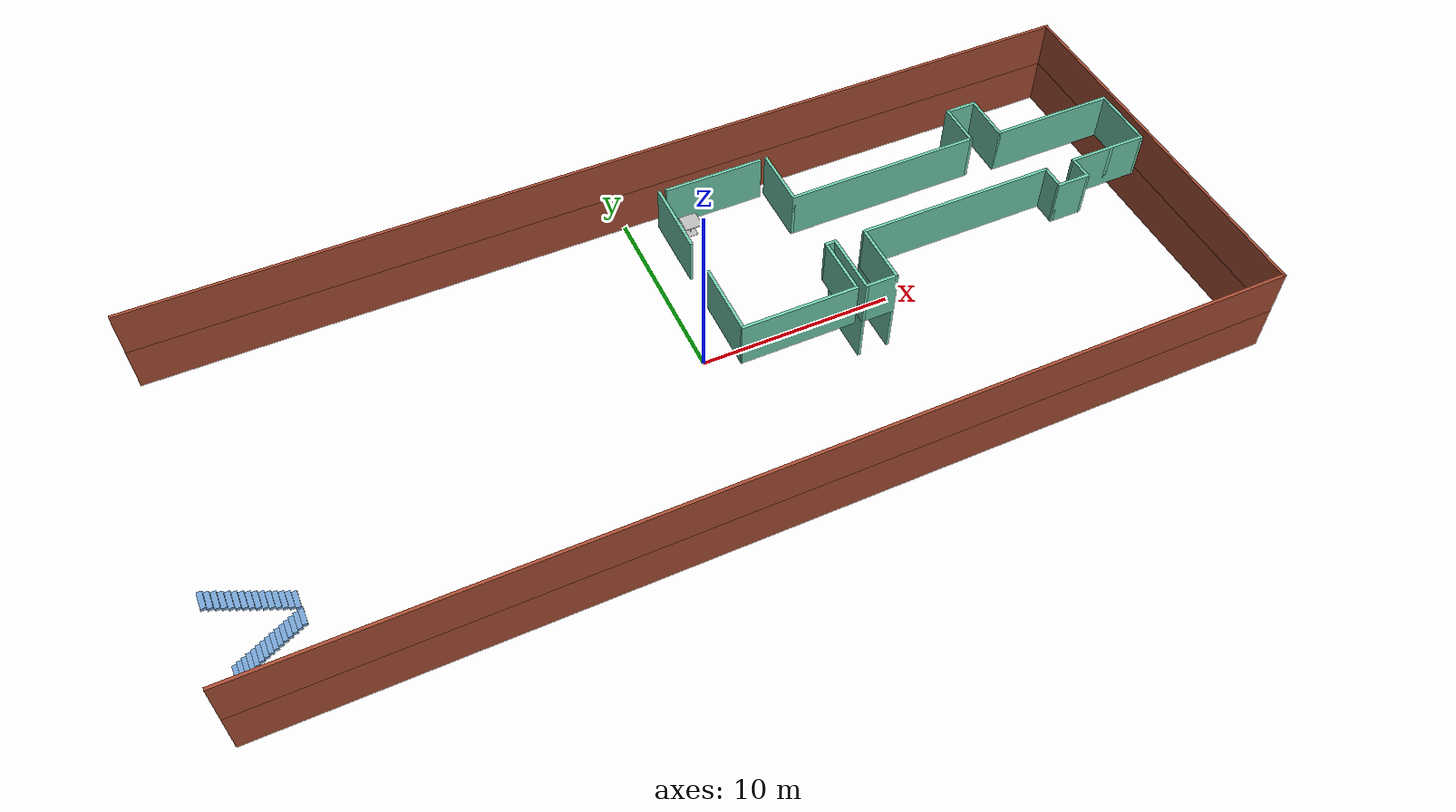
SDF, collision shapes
<sdf version="1.7">
 <model name="Version_precise_map_gazebo">
  <link name="Stairs_1">
   <visual name="Stairs_1_Visual_0">
    <pose>-24.3272 -6.95968 0.083333 0 -0 1.5708</pose>
    <geometry><box><size>0.81 0.233333 0.166667</size></box></geometry>
    <material>
     <script><uri>file://media/materials/scripts/gazebo.material</uri><name>Gazebo/Grey</name></script>
     <ambient>0.447059 0.623529 0.811765 1</ambient>
    </material>
    <meta><layer>0</layer></meta>
   </visual>
   <collision name="Stairs_1_Collision_0">
    <geometry><box><size>0.81 0.233333 0.166667</size></box></geometry>
    <pose>-24.3272 -6.95968 0.083333 0 -0 1.5708</pose>
   </collision>
   <visual name="Stairs_1_Visual_1">
    <pose>-24.0938 -6.95968 0.25 0 -0 1.5708</pose>
    <geometry><box><size>0.81 0.233333 0.166667</size></box></geometry>
    <material>
     <script><uri>file://media/materials/scripts/gazebo.material</uri><name>Gazebo/Grey</name></script>
     <ambient>0.447059 0.623529 0.811765 1</ambient>
    </material>
    <meta><layer>0</layer></meta>
   </visual>
   <collision name="Stairs_1_Collision_1">
    <geometry><box><size>0.81 0.233333 0.166667</size></box></geometry>
    <pose>-24.0938 -6.95968 0.25 0 -0 1.5708</pose>
   </collision>
   <visual name="Stairs_1_Visual_2">
    <pose>-23.8605 -6.95968 0.416667 0 -0 1.5708</pose>
    <geometry><box><size>0.81 0.233333 0.166667</size></box></geometry>
    <material>
     <script><uri>file://media/materials/scripts/gazebo.material</uri><name>Gazebo/Grey</name></script>
     <ambient>0.447059 0.623529 0.811765 1</ambient>
    </material>
    <meta><layer>0</layer></meta>
   </visual>
   <collision name="Stairs_1_Collision_2">
    <geometry><box><size>0.81 0.233333 0.166667</size></box></geometry>
    <pose>-23.8605 -6.95968 0.416667 0 -0 1.5708</pose>
   </collision>
   <visual name="Stairs_1_Visual_3">
    <pose>-23.6272 -6.95968 0.583333 0 -0 1.5708</pose>
    <geometry><box><size>0.81 0.233333 0.166667</size></box></geometry>
    <material>
     <script><uri>file://media/materials/scripts/gazebo.material</uri><name>Gazebo/Grey</name></script>
     <ambient>0.447059 0.623529 0.811765 1</ambient>
    </material>
    <meta><layer>0</layer></meta>
   </visual>
   <collision name="Stairs_1_Collision_3">
    <geometry><box><size>0.81 0.233333 0.166667</size></box></geometry>
    <pose>-23.6272 -6.95968 0.583333 0 -0 1.5708</pose>
   </collision>
   <visual name="Stairs_1_Visual_4">
    <pose>-23.3938 -6.95968 0.75 0 -0 1.5708</pose>
    <geometry><box><size>0.81 0.233333 0.166667</size></box></geometry>
    <material>
     <script><uri>file://media/materials/scripts/gazebo.material</uri><name>Gazebo/Grey</name></script>
     <ambient>0.447059 0.623529 0.811765 1</ambient>
    </material>
    <meta><layer>0</layer></meta>
   </visual>
   <collision name="Stairs_1_Collision_4">
    <geometry><box><size>0.81 0.233333 0.166667</size></box></geometry>
    <pose>-23.3938 -6.95968 0.75 0 -0 1.5708</pose>
   </collision>
   <visual name="Stairs_1_Visual_5">
    <pose>-23.1605 -6.95968 0.916667 0 -0 1.5708</pose>
    <geometry><box><size>0.81 0.233333 0.166667</size></box></geometry>
    <material>
     <script><uri>file://media/materials/scripts/gazebo.material</uri><name>Gazebo/Grey</name></script>
     <ambient>0.447059 0.623529 0.811765 1</ambient>
    </material>
    <meta><layer>0</layer></meta>
   </visual>
   <collision name="Stairs_1_Collision_5">
    <geometry><box><size>0.81 0.233333 0.166667</size></box></geometry>
    <pose>-23.1605 -6.95968 0.916667 0 -0 1.5708</pose>
   </collision>
   <visual name="Stairs_1_Visual_6">
    <pose>-22.9272 -6.95968 1.08333 0 -0 1.5708</pose>
    <geometry><box><size>0.81 0.233333 0.166667</size></box></geometry>
    <material>
     <script><uri>file://media/materials/scripts/gazebo.material</uri><name>Gazebo/Grey</name></script>
     <ambient>0.447059 0.623529 0.811765 1</ambient>
    </material>
    <meta><layer>0</layer></meta>
   </visual>
   <collision name="Stairs_1_Collision_6">
    <geometry><box><size>0.81 0.233333 0.166667</size></box></geometry>
    <pose>-22.9272 -6.95968 1.08333 0 -0 1.5708</pose>
   </collision>
   <visual name="Stairs_1_Visual_7">
    <pose>-22.6938 -6.95968 1.25 0 -0 1.5708</pose>
    <geometry><box><size>0.81 0.233333 0.166667</size></box></geometry>
    <material>
     <script><uri>file://media/materials/scripts/gazebo.material</uri><name>Gazebo/Grey</name></script>
     <ambient>0.447059 0.623529 0.811765 1</ambient>
    </material>
    <meta><layer>0</layer></meta>
   </visual>
   <collision name="Stairs_1_Collision_7">
    <geometry><box><size>0.81 0.233333 0.166667</size></box></geometry>
    <pose>-22.6938 -6.95968 1.25 0 -0 1.5708</pose>
   </collision>
   <visual name="Stairs_1_Visual_8">
    <pose>-22.4605 -6.95968 1.41667 0 -0 1.5708</pose>
    <geometry><box><size>0.81 0.233333 0.166667</size></box></geometry>
    <material>
     <script><uri>file://media/materials/scripts/gazebo.material</uri><name>Gazebo/Grey</name></script>
     <ambient>0.447059 0.623529 0.811765 1</ambient>
    </material>
    <meta><layer>0</layer></meta>
   </visual>
   <collision name="Stairs_1_Collision_8">
    <geometry><box><size>0.81 0.233333 0.166667</size></box></geometry>
    <pose>-22.4605 -6.95968 1.41667 0 -0 1.5708</pose>
   </collision>
   <visual name="Stairs_1_Visual_9">
    <pose>-22.2272 -6.95968 1.58333 0 -0 1.5708</pose>
    <geometry><box><size>0.81 0.233333 0.166667</size></box></geometry>
    <material>
     <script><uri>file://media/materials/scripts/gazebo.material</uri><name>Gazebo/Grey</name></script>
     <ambient>0.447059 0.623529 0.811765 1</ambient>
    </material>
    <meta><layer>0</layer></meta>
   </visual>
   <collision name="Stairs_1_Collision_9">
    <geometry><box><size>0.81 0.233333 0.166667</size></box></geometry>
    <pose>-22.2272 -6.95968 1.58333 0 -0 1.5708</pose>
   </collision>
   <visual name="Stairs_1_Visual_10">
    <pose>-21.9938 -6.95968 1.75 0 -0 1.5708</pose>
    <geometry><box><size>0.81 0.233333 0.166667</size></box></geometry>
    <material>
     <script><uri>file://media/materials/scripts/gazebo.material</uri><name>Gazebo/Grey</name></script>
     <ambient>0.447059 0.623529 0.811765 1</ambient>
    </material>
    <meta><layer>0</layer></meta>
   </visual>
   <collision name="Stairs_1_Collision_10">
    <geometry><box><size>0.81 0.233333 0.166667</size></box></geometry>
    <pose>-21.9938 -6.95968 1.75 0 -0 1.5708</pose>
   </collision>
   <visual name="Stairs_1_Visual_11">
    <pose>-21.7605 -6.95968 1.91667 0 -0 1.5708</pose>
    <geometry><box><size>0.81 0.233333 0.166667</size></box></geometry>
    <material>
     <script><uri>file://media/materials/scripts/gazebo.material</uri><name>Gazebo/Grey</name></script>
     <ambient>0.447059 0.623529 0.811765 1</ambient>
    </material>
    <meta><layer>0</layer></meta>
   </visual>
   <collision name="Stairs_1_Collision_11">
    <geometry><box><size>0.81 0.233333 0.166667</size></box></geometry>
    <pose>-21.7605 -6.95968 1.91667 0 -0 1.5708</pose>
   </collision>
   <visual name="Stairs_1_Visual_12">
    <pose>-21.5272 -6.95968 2.08333 0 -0 1.5708</pose>
    <geometry><box><size>0.81 0.233333 0.166667</size></box></geometry>
    <material>
     <script><uri>file://media/materials/scripts/gazebo.material</uri><name>Gazebo/Grey</name></script>
     <ambient>0.447059 0.623529 0.811765 1</ambient>
    </material>
    <meta><layer>0</layer></meta>
   </visual>
   <collision name="Stairs_1_Collision_12">
    <geometry><box><size>0.81 0.233333 0.166667</size></box></geometry>
    <pose>-21.5272 -6.95968 2.08333 0 -0 1.5708</pose>
   </collision>
   <visual name="Stairs_1_Visual_13">
    <pose>-21.2938 -6.95968 2.25 0 -0 1.5708</pose>
    <geometry><box><size>0.81 0.233333 0.166667</size></box></geometry>
    <material>
     <script><uri>file://media/materials/scripts/gazebo.material</uri><name>Gazebo/Grey</name></script>
     <ambient>0.447059 0.623529 0.811765 1</ambient>
    </material>
    <meta><layer>0</layer></meta>
   </visual>
   <collision name="Stairs_1_Collision_13">
    <geometry><box><size>0.81 0.233333 0.166667</size></box></geometry>
    <pose>-21.2938 -6.95968 2.25 0 -0 1.5708</pose>
   </collision>
   <visual name="Stairs_1_Visual_14">
    <pose>-21.0605 -6.95968 2.41667 0 -0 1.5708</pose>
    <geometry><box><size>0.81 0.233333 0.166667</size></box></geometry>
    <material>
     <script><uri>file://media/materials/scripts/gazebo.material</uri><name>Gazebo/Grey</name></script>
     <ambient>0.447059 0.623529 0.811765 1</ambient>
    </material>
    <meta><layer>0</layer></meta>
   </visual>
   <collision name="Stairs_1_Collision_14">
    <geometry><box><size>0.81 0.233333 0.166667</size></box></geometry>
    <pose>-21.0605 -6.95968 2.41667 0 -0 1.5708</pose>
   </collision>
  </link>
  <link name="Stairs_2">
   <visual name="Stairs_2_Visual_0">
    <pose>-21.0867 -6.202 2.58333 0 -0 -1.5708</pose>
    <geometry><box><size>0.81 0.233333 0.166667</size></box></geometry>
    <material>
     <script><uri>file://media/materials/scripts/gazebo.material</uri><name>Gazebo/Grey</name></script>
     <ambient>0.447059 0.623529 0.811765 1</ambient>
    </material>
    <meta><layer>1</layer></meta>
   </visual>
   <collision name="Stairs_2_Collision_0">
    <geometry><box><size>0.81 0.233333 0.166667</size></box></geometry>
    <pose>-21.0867 -6.202 2.58333 0 -0 -1.5708</pose>
   </collision>
   <visual name="Stairs_2_Visual_1">
    <pose>-21.32 -6.202 2.75 0 -0 -1.5708</pose>
    <geometry><box><size>0.81 0.233333 0.166667</size></box></geometry>
    <material>
     <script><uri>file://media/materials/scripts/gazebo.material</uri><name>Gazebo/Grey</name></script>
     <ambient>0.447059 0.623529 0.811765 1</ambient>
    </material>
    <meta><layer>1</layer></meta>
   </visual>
   <collision name="Stairs_2_Collision_1">
    <geometry><box><size>0.81 0.233333 0.166667</size></box></geometry>
    <pose>-21.32 -6.202 2.75 0 -0 -1.5708</pose>
   </collision>
   <visual name="Stairs_2_Visual_2">
    <pose>-21.5533 -6.202 2.91667 0 -0 -1.5708</pose>
    <geometry><box><size>0.81 0.233333 0.166667</size></box></geometry>
    <material>
     <script><uri>file://media/materials/scripts/gazebo.material</uri><name>Gazebo/Grey</name></script>
     <ambient>0.447059 0.623529 0.811765 1</ambient>
    </material>
    <meta><layer>1</layer></meta>
   </visual>
   <collision name="Stairs_2_Collision_2">
    <geometry><box><size>0.81 0.233333 0.166667</size></box></geometry>
    <pose>-21.5533 -6.202 2.91667 0 -0 -1.5708</pose>
   </collision>
   <visual name="Stairs_2_Visual_3">
    <pose>-21.7867 -6.202 3.08333 0 -0 -1.5708</pose>
    <geometry><box><size>0.81 0.233333 0.166667</size></box></geometry>
    <material>
     <script><uri>file://media/materials/scripts/gazebo.material</uri><name>Gazebo/Grey</name></script>
     <ambient>0.447059 0.623529 0.811765 1</ambient>
    </material>
    <meta><layer>1</layer></meta>
   </visual>
   <collision name="Stairs_2_Collision_3">
    <geometry><box><size>0.81 0.233333 0.166667</size></box></geometry>
    <pose>-21.7867 -6.202 3.08333 0 -0 -1.5708</pose>
   </collision>
   <visual name="Stairs_2_Visual_4">
    <pose>-22.02 -6.202 3.25 0 -0 -1.5708</pose>
    <geometry><box><size>0.81 0.233333 0.166667</size></box></geometry>
    <material>
     <script><uri>file://media/materials/scripts/gazebo.material</uri><name>Gazebo/Grey</name></script>
     <ambient>0.447059 0.623529 0.811765 1</ambient>
    </material>
    <meta><layer>1</layer></meta>
   </visual>
   <collision name="Stairs_2_Collision_4">
    <geometry><box><size>0.81 0.233333 0.166667</size></box></geometry>
    <pose>-22.02 -6.202 3.25 0 -0 -1.5708</pose>
   </collision>
   <visual name="Stairs_2_Visual_5">
    <pose>-22.2533 -6.202 3.41667 0 -0 -1.5708</pose>
    <geometry><box><size>0.81 0.233333 0.166667</size></box></geometry>
    <material>
     <script><uri>file://media/materials/scripts/gazebo.material</uri><name>Gazebo/Grey</name></script>
     <ambient>0.447059 0.623529 0.811765 1</ambient>
    </material>
    <meta><layer>1</layer></meta>
   </visual>
   <collision name="Stairs_2_Collision_5">
    <geometry><box><size>0.81 0.233333 0.166667</size></box></geometry>
    <pose>-22.2533 -6.202 3.41667 0 -0 -1.5708</pose>
   </collision>
   <visual name="Stairs_2_Visual_6">
    <pose>-22.4867 -6.202 3.58333 0 -0 -1.5708</pose>
    <geometry><box><size>0.81 0.233333 0.166667</size></box></geometry>
    <material>
     <script><uri>file://media/materials/scripts/gazebo.material</uri><name>Gazebo/Grey</name></script>
     <ambient>0.447059 0.623529 0.811765 1</ambient>
    </material>
    <meta><layer>1</layer></meta>
   </visual>
   <collision name="Stairs_2_Collision_6">
    <geometry><box><size>0.81 0.233333 0.166667</size></box></geometry>
    <pose>-22.4867 -6.202 3.58333 0 -0 -1.5708</pose>
   </collision>
   <visual name="Stairs_2_Visual_7">
    <pose>-22.72 -6.202 3.75 0 -0 -1.5708</pose>
    <geometry><box><size>0.81 0.233333 0.166667</size></box></geometry>
    <material>
     <script><uri>file://media/materials/scripts/gazebo.material</uri><name>Gazebo/Grey</name></script>
     <ambient>0.447059 0.623529 0.811765 1</ambient>
    </material>
    <meta><layer>1</layer></meta>
   </visual>
   <collision name="Stairs_2_Collision_7">
    <geometry><box><size>0.81 0.233333 0.166667</size></box></geometry>
    <pose>-22.72 -6.202 3.75 0 -0 -1.5708</pose>
   </collision>
   <visual name="Stairs_2_Visual_8">
    <pose>-22.9533 -6.202 3.91667 0 -0 -1.5708</pose>
    <geometry><box><size>0.81 0.233333 0.166667</size></box></geometry>
    <material>
     <script><uri>file://media/materials/scripts/gazebo.material</uri><name>Gazebo/Grey</name></script>
     <ambient>0.447059 0.623529 0.811765 1</ambient>
    </material>
    <meta><layer>1</layer></meta>
   </visual>
   <collision name="Stairs_2_Collision_8">
    <geometry><box><size>0.81 0.233333 0.166667</size></box></geometry>
    <pose>-22.9533 -6.202 3.91667 0 -0 -1.5708</pose>
   </collision>
   <visual name="Stairs_2_Visual_9">
    <pose>-23.1867 -6.202 4.08333 0 -0 -1.5708</pose>
    <geometry><box><size>0.81 0.233333 0.166667</size></box></geometry>
    <material>
     <script><uri>file://media/materials/scripts/gazebo.material</uri><name>Gazebo/Grey</name></script>
     <ambient>0.447059 0.623529 0.811765 1</ambient>
    </material>
    <meta><layer>1</layer></meta>
   </visual>
   <collision name="Stairs_2_Collision_9">
    <geometry><box><size>0.81 0.233333 0.166667</size></box></geometry>
    <pose>-23.1867 -6.202 4.08333 0 -0 -1.5708</pose>
   </collision>
   <visual name="Stairs_2_Visual_10">
    <pose>-23.42 -6.202 4.25 0 -0 -1.5708</pose>
    <geometry><box><size>0.81 0.233333 0.166667</size></box></geometry>
    <material>
     <script><uri>file://media/materials/scripts/gazebo.material</uri><name>Gazebo/Grey</name></script>
     <ambient>0.447059 0.623529 0.811765 1</ambient>
    </material>
    <meta><layer>1</layer></meta>
   </visual>
   <collision name="Stairs_2_Collision_10">
    <geometry><box><size>0.81 0.233333 0.166667</size></box></geometry>
    <pose>-23.42 -6.202 4.25 0 -0 -1.5708</pose>
   </collision>
   <visual name="Stairs_2_Visual_11">
    <pose>-23.6533 -6.202 4.41667 0 -0 -1.5708</pose>
    <geometry><box><size>0.81 0.233333 0.166667</size></box></geometry>
    <material>
     <script><uri>file://media/materials/scripts/gazebo.material</uri><name>Gazebo/Grey</name></script>
     <ambient>0.447059 0.623529 0.811765 1</ambient>
    </material>
    <meta><layer>1</layer></meta>
   </visual>
   <collision name="Stairs_2_Collision_11">
    <geometry><box><size>0.81 0.233333 0.166667</size></box></geometry>
    <pose>-23.6533 -6.202 4.41667 0 -0 -1.5708</pose>
   </collision>
   <visual name="Stairs_2_Visual_12">
    <pose>-23.8867 -6.202 4.58333 0 -0 -1.5708</pose>
    <geometry><box><size>0.81 0.233333 0.166667</size></box></geometry>
    <material>
     <script><uri>file://media/materials/scripts/gazebo.material</uri><name>Gazebo/Grey</name></script>
     <ambient>0.447059 0.623529 0.811765 1</ambient>
    </material>
    <meta><layer>1</layer></meta>
   </visual>
   <collision name="Stairs_2_Collision_12">
    <geometry><box><size>0.81 0.233333 0.166667</size></box></geometry>
    <pose>-23.8867 -6.202 4.58333 0 -0 -1.5708</pose>
   </collision>
   <visual name="Stairs_2_Visual_13">
    <pose>-24.12 -6.202 4.75 0 -0 -1.5708</pose>
    <geometry><box><size>0.81 0.233333 0.166667</size></box></geometry>
    <material>
     <script><uri>file://media/materials/scripts/gazebo.material</uri><name>Gazebo/Grey</name></script>
     <ambient>0.447059 0.623529 0.811765 1</ambient>
    </material>
    <meta><layer>1</layer></meta>
   </visual>
   <collision name="Stairs_2_Collision_13">
    <geometry><box><size>0.81 0.233333 0.166667</size></box></geometry>
    <pose>-24.12 -6.202 4.75 0 -0 -1.5708</pose>
   </collision>
   <visual name="Stairs_2_Visual_14">
    <pose>-24.3533 -6.202 4.91667 0 -0 -1.5708</pose>
    <geometry><box><size>0.81 0.233333 0.166667</size></box></geometry>
    <material>
     <script><uri>file://media/materials/scripts/gazebo.material</uri><name>Gazebo/Grey</name></script>
     <ambient>0.447059 0.623529 0.811765 1</ambient>
    </material>
    <meta><layer>1</layer></meta>
   </visual>
   <collision name="Stairs_2_Collision_14">
    <geometry><box><size>0.81 0.233333 0.166667</size></box></geometry>
    <pose>-24.3533 -6.202 4.91667 0 -0 -1.5708</pose>
   </collision>
  </link>
  <link name="Wall_0">
   <collision name="Wall_0_Collision">
    <geometry><box><size>50.15 0.15 2.5</size></box></geometry>
    <pose>0 0 1.25 0 -0 0</pose>
   </collision>
   <visual name="Wall_0_Visual">
    <pose>0 0 1.25 0 -0 0</pose>
    <geometry><box><size>50.15 0.15 2.5</size></box></geometry>
    <material>
     <script><uri>file://media/materials/scripts/gazebo.material</uri><name>Gazebo/Bricks</name></script>
     <ambient>1 1 1 1</ambient>
    </material>
    <meta><layer>0</layer></meta>
   </visual>
   <pose>0 10 0 0 -0 0</pose>
  </link>
  <link name="Wall_118">
   <collision name="Wall_118_Collision">
    <geometry><box><size>3.875 0.15 2.5</size></box></geometry>
    <pose>0 0 1.25 0 -0 0</pose>
   </collision>
   <visual name="Wall_118_Visual">
    <pose>0 0 1.25 0 -0 0</pose>
    <geometry><box><size>3.875 0.15 2.5</size></box></geometry>
    <material>
     <script><uri>file://media/materials/scripts/gazebo.material</uri><name>Gazebo/Grey</name></script>
     <ambient>0.435294 0.796078 0.67451 1</ambient>
    </material>
    <meta><layer>1</layer></meta>
    <transparency>0.5</transparency>
   </visual>
   <pose>0.8 5.1375 2.5 0 -0 -1.5708</pose>
  </link>
  <link name="Wall_146">
   <collision name="Wall_146_Collision">
    <geometry><box><size>4.2 0.15 2.5</size></box></geometry>
    <pose>0 0 1.25 0 -0 0</pose>
   </collision>
   <visual name="Wall_146_Visual">
    <pose>0 0 1.25 0 -0 0</pose>
    <geometry><box><size>4.2 0.15 2.5</size></box></geometry>
    <material>
     <script><uri>file://media/materials/scripts/gazebo.material</uri><name>Gazebo/Grey</name></script>
     <ambient>0.435294 0.796078 0.67451 1</ambient>
    </material>
    <meta><layer>1</layer></meta>
    <transparency>0.5</transparency>
   </visual>
   <pose>22.475 0.55 2.5 0 -0 0</pose>
  </link>
  <link name="Wall_148">
   <collision name="Wall_148_Collision">
    <geometry><box><size>3.25 0.15 2.5</size></box></geometry>
    <pose>0 0 1.25 0 -0 0</pose>
   </collision>
   <visual name="Wall_148_Visual">
    <pose>0 0 1.25 0 -0 0</pose>
    <geometry><box><size>3.25 0.15 2.5</size></box></geometry>
    <material>
     <script><uri>file://media/materials/scripts/gazebo.material</uri><name>Gazebo/Grey</name></script>
     <ambient>0.435294 0.796078 0.67451 1</ambient>
    </material>
    <meta><layer>1</layer></meta>
    <transparency>0.5</transparency>
   </visual>
   <pose>7.08 -1 2.5 0 -0 -1.5708</pose>
  </link>
  <link name="Wall_150">
   <collision name="Wall_150_Collision">
    <geometry><box><size>3.25 0.15 2.5</size></box></geometry>
    <pose>0 0 1.25 0 -0 0</pose>
   </collision>
   <visual name="Wall_150_Visual">
    <pose>0 0 1.25 0 -0 0</pose>
    <geometry><box><size>3.25 0.15 2.5</size></box></geometry>
    <material>
     <script><uri>file://media/materials/scripts/gazebo.material</uri><name>Gazebo/Grey</name></script>
     <ambient>0.435294 0.796078 0.67451 1</ambient>
    </material>
    <meta><layer>1</layer></meta>
    <transparency>0.5</transparency>
   </visual>
   <pose>8.64 -1 2.5 0 -0 -1.5708</pose>
  </link>
  <link name="Wall_198">
   <collision name="Wall_198_Collision">
    <geometry><box><size>1.71 0.15 2.5</size></box></geometry>
    <pose>0 0 1.25 0 -0 0</pose>
   </collision>
   <visual name="Wall_198_Visual">
    <pose>0 0 1.25 0 -0 0</pose>
    <geometry><box><size>1.71 0.15 2.5</size></box></geometry>
    <material>
     <script><uri>file://media/materials/scripts/gazebo.material</uri><name>Gazebo/Grey</name></script>
     <ambient>0.435294 0.796078 0.67451 1</ambient>
    </material>
    <meta><layer>1</layer></meta>
    <transparency>0.5</transparency>
   </visual>
   <pose>7.86 -2.55 2.5 0 -0 3.14159</pose>
  </link>
  <link name="Wall_152">
   <collision name="Wall_152_Collision">
    <geometry><box><size>3.25 0.15 2.5</size></box></geometry>
    <pose>0 0 1.25 0 -0 0</pose>
   </collision>
   <visual name="Wall_152_Visual">
    <pose>0 0 1.25 0 -0 0</pose>
    <geometry><box><size>3.85 0.15 2.5</size></box></geometry>
    <material>
     <script><uri>file://media/materials/scripts/gazebo.material</uri><name>Gazebo/Grey</name></script>
     <ambient>0.435294 0.796078 0.67451 1</ambient>
    </material>
    <meta><layer>0</layer></meta>
    <transparency>0.5</transparency>
   </visual>
   <pose>7.08 -1 0 0 -0 -1.5708</pose>
  </link>
  <link name="Wall_154">
   <collision name="Wall_154_Collision">
    <geometry><box><size>3.25 0.15 2.5</size></box></geometry>
    <pose>0 0 1.25 0 -0 0</pose>
   </collision>
   <visual name="Wall_154_Visual">
    <pose>0 0 1.25 0 -0 0</pose>
    <geometry><box><size>3.25 0.15 2.5</size></box></geometry>
    <material>
     <script><uri>file://media/materials/scripts/gazebo.material</uri><name>Gazebo/Grey</name></script>
     <ambient>0.435294 0.796078 0.67451 1</ambient>
    </material>
    <meta><layer>0</layer></meta>
    <transparency>0.5</transparency>
   </visual>
   <pose>8.64 -1 0 0 -0 -1.5708</pose>
  </link>
  <link name="Wall_2">
   <collision name="Wall_2_Collision">
    <geometry><box><size>50.15 0.15 2.5</size></box></geometry>
    <pose>0 0 1.25 0 -0 0</pose>
   </collision>
   <visual name="Wall_2_Visual">
    <pose>0 0 1.25 0 -0 0</pose>
    <geometry><box><size>50.15 0.15 2.5</size></box></geometry>
    <material>
     <script><uri>file://media/materials/scripts/gazebo.material</uri><name>Gazebo/Bricks</name></script>
     <ambient>1 1 1 1</ambient>
    </material>
    <meta><layer>0</layer></meta>
   </visual>
   <pose>0 -10 0 0 -0 3.14159</pose>
  </link>
  <link name="Wall_52">
   <collision name="Wall_52_Collision">
    <geometry><box><size>50.15 0.15 2.5</size></box></geometry>
    <pose>0 0 1.25 0 -0 0</pose>
   </collision>
   <visual name="Wall_52_Visual">
    <pose>0 0 1.25 0 -0 0</pose>
    <geometry><box><size>50.15 0.15 2.5</size></box></geometry>
    <material>
     <script><uri>file://media/materials/scripts/gazebo.material</uri><name>Gazebo/Bricks</name></script>
     <ambient>1 1 1 1</ambient>
    </material>
    <meta><layer>1</layer></meta>
   </visual>
   <pose>0 10 2.5 0 -0 0</pose>
  </link>
  <link name="Wall_53">
   <collision name="Wall_53_Collision">
    <geometry><box><size>50.15 0.15 2.5</size></box></geometry>
    <pose>0 0 1.25 0 -0 0</pose>
   </collision>
   <visual name="Wall_53_Visual">
    <pose>0 0 1.25 0 -0 0</pose>
    <geometry><box><size>50.15 0.15 2.5</size></box></geometry>
    <material>
     <script><uri>file://media/materials/scripts/gazebo.material</uri><name>Gazebo/Bricks</name></script>
     <ambient>1 1 1 1</ambient>
    </material>
    <meta><layer>1</layer></meta>
   </visual>
   <pose>0 -10 2.5 0 -0 3.14159</pose>
  </link>
  <link name="Wall_55">
   <collision name="Wall_55_Collision">
    <geometry><box><size>20.15 0.15 2.5</size></box></geometry>
    <pose>0 0 1.25 0 -0 0</pose>
   </collision>
   <visual name="Wall_55_Visual">
    <pose>0 0 1.25 0 -0 0</pose>
    <geometry><box><size>20.15 0.15 2.5</size></box></geometry>
    <material>
     <script><uri>file://media/materials/scripts/gazebo.material</uri><name>Gazebo/Bricks</name></script>
     <ambient>1 1 1 1</ambient>
    </material>
    <meta><layer>1</layer></meta>
   </visual>
   <pose>25 0 2.5 0 -0 1.5708</pose>
  </link>
  <link name="Wall_56">
   <collision name="Wall_56_Collision">
    <geometry><box><size>5.15 0.15 2.5</size></box></geometry>
    <pose>0 0 1.25 0 -0 0</pose>
   </collision>
   <visual name="Wall_56_Visual">
    <pose>0 0 1.25 0 -0 0</pose>
    <geometry><box><size>5.95 0.15 2.5</size></box></geometry>
    <material>
     <script><uri>file://media/materials/scripts/gazebo.material</uri><name>Gazebo/Grey</name></script>
     <ambient>0.435294 0.796078 0.67451 1</ambient>
    </material>
    <meta><layer>1</layer></meta>
    <transparency>0.5</transparency>
   </visual>
   <pose>3.7 7 2.5 0 -0 0</pose>
  </link>
  <link name="Wall_58">
   <collision name="Wall_58_Collision">
    <geometry><box><size>3.15 0.15 2.5</size></box></geometry>
    <pose>0 0 1.25 0 -0 0</pose>
   </collision>
   <visual name="Wall_58_Visual">
    <pose>0 0 1.25 0 -0 0</pose>
    <geometry><box><size>3.15 0.15 2.5</size></box></geometry>
    <material>
     <script><uri>file://media/materials/scripts/gazebo.material</uri><name>Gazebo/Grey</name></script>
     <ambient>0.435294 0.796078 0.67451 1</ambient>
    </material>
    <meta><layer>1</layer></meta>
    <transparency>0.5</transparency>
   </visual>
   <pose>6.6 5.5 2.5 0 -0 -1.5708</pose>
  </link>
  <link name="Wall_6">
   <collision name="Wall_6_Collision">
    <geometry><box><size>20.15 0.15 2.5</size></box></geometry>
    <pose>0 0 1.25 0 -0 0</pose>
   </collision>
   <visual name="Wall_6_Visual">
    <pose>0 0 1.25 0 -0 0</pose>
    <geometry><box><size>20.15 0.15 2.5</size></box></geometry>
    <material>
     <script><uri>file://media/materials/scripts/gazebo.material</uri><name>Gazebo/Bricks</name></script>
     <ambient>1 1 1 1</ambient>
    </material>
    <meta><layer>0</layer></meta>
   </visual>
   <pose>25 0 0 0 -0 1.5708</pose>
  </link>
  <link name="Wall_60">
   <collision name="Wall_60_Collision">
    <geometry><box><size>10.15 0.15 2.5</size></box></geometry>
    <pose>0 0 1.25 0 -0 0</pose>
   </collision>
   <visual name="Wall_60_Visual">
    <pose>0 0 1.25 0 -0 0</pose>
    <geometry><box><size>10.15 0.15 2.5</size></box></geometry>
    <material>
     <script><uri>file://media/materials/scripts/gazebo.material</uri><name>Gazebo/Grey</name></script>
     <ambient>0.435294 0.796078 0.67451 1</ambient>
    </material>
    <meta><layer>1</layer></meta>
    <transparency>0.5</transparency>
   </visual>
   <pose>11.6 4 2.5 0 -0 0</pose>
  </link>
  <link name="Wall_62">
   <collision name="Wall_62_Collision">
    <geometry><box><size>2.4 0.15 2.5</size></box></geometry>
    <pose>0 0 1.25 0 -0 0</pose>
   </collision>
   <visual name="Wall_62_Visual">
    <pose>0 0 1.25 0 -0 0</pose>
    <geometry><box><size>2.4 0.15 2.5</size></box></geometry>
    <material>
     <script><uri>file://media/materials/scripts/gazebo.material</uri><name>Gazebo/Grey</name></script>
     <ambient>0.435294 0.796078 0.67451 1</ambient>
    </material>
    <meta><layer>1</layer></meta>
    <transparency>0.5</transparency>
   </visual>
   <pose>16.6 5.125 2.5 0 -0 1.5708</pose>
  </link>
  <link name="Wall_64">
   <collision name="Wall_64_Collision">
    <geometry><box><size>2.6 0.15 2.5</size></box></geometry>
    <pose>0 0 1.25 0 -0 0</pose>
   </collision>
   <visual name="Wall_64_Visual">
    <pose>0 0 1.25 0 -0 0</pose>
    <geometry><box><size>2.6 0.15 2.5</size></box></geometry>
    <material>
     <script><uri>file://media/materials/scripts/gazebo.material</uri><name>Gazebo/Grey</name></script>
     <ambient>0.435294 0.796078 0.67451 1</ambient>
    </material>
    <meta><layer>1</layer></meta>
    <transparency>0.5</transparency>
   </visual>
   <pose>18.15 5.025 2.5 0 -0 -1.5708</pose>
  </link>
  <link name="Wall_66">
   <collision name="Wall_66_Collision">
    <geometry><box><size>1.7 0.15 2.5</size></box></geometry>
    <pose>0 0 1.25 0 -0 0</pose>
   </collision>
   <visual name="Wall_66_Visual">
    <pose>0 0 1.25 0 -0 0</pose>
    <geometry><box><size>1.7 0.15 2.5</size></box></geometry>
    <material>
     <script><uri>file://media/materials/scripts/gazebo.material</uri><name>Gazebo/Grey</name></script>
     <ambient>0.435294 0.796078 0.67451 1</ambient>
    </material>
    <meta><layer>1</layer></meta>
    <transparency>0.5</transparency>
   </visual>
   <pose>17.375 6.25 2.5 0 -0 0</pose>
  </link>
  <link name="Wall_68">
   <collision name="Wall_68_Collision">
    <geometry><box><size>6.5 0.15 2.5</size></box></geometry>
    <pose>0 0 1.25 0 -0 0</pose>
   </collision>
   <visual name="Wall_68_Visual">
    <pose>0 0 1.25 0 -0 0</pose>
    <geometry><box><size>6.5 0.15 2.5</size></box></geometry>
    <material>
     <script><uri>file://media/materials/scripts/gazebo.material</uri><name>Gazebo/Grey</name></script>
     <ambient>0.435294 0.796078 0.67451 1</ambient>
    </material>
    <meta><layer>1</layer></meta>
    <transparency>0.5</transparency>
   </visual>
   <pose>21.325 3.8 2.5 0 -0 0</pose>
  </link>
  <link name="Wall_70">
   <collision name="Wall_70_Collision">
    <geometry><box><size>3.4 0.15 2.5</size></box></geometry>
    <pose>0 0 1.25 0 -0 0</pose>
   </collision>
   <visual name="Wall_70_Visual">
    <pose>0 0 1.25 0 -0 0</pose>
    <geometry><box><size>3.4 0.15 2.5</size></box></geometry>
    <material>
     <script><uri>file://media/materials/scripts/gazebo.material</uri><name>Gazebo/Grey</name></script>
     <ambient>0.435294 0.796078 0.67451 1</ambient>
    </material>
    <meta><layer>1</layer></meta>
    <transparency>0.5</transparency>
   </visual>
   <pose>24.5 2.175 2.5 0 -0 -1.5708</pose>
  </link>
  <link name="Wall_72">
   <collision name="Wall_72_Collision">
    <geometry><box><size>0.2 0.15 2.5</size></box></geometry>
    <pose>0 0 1.25 0 -0 0</pose>
   </collision>
   <visual name="Wall_72_Visual">
    <pose>0 0 1.25 0 -0 0</pose>
    <geometry><box><size>0.2 0.15 2.5</size></box></geometry>
    <material>
     <script><uri>file://media/materials/scripts/gazebo.material</uri><name>Gazebo/Grey</name></script>
     <ambient>0.435294 0.796078 0.67451 1</ambient>
    </material>
    <meta><layer>1</layer></meta>
    <transparency>0.5</transparency>
   </visual>
   <pose>22.675 0.55 2.5 0 -0 3.14159</pose>
  </link>
  <link name="Wall_74">
   <collision name="Wall_74_Collision">
    <geometry><box><size>1.35 0.15 2.5</size></box></geometry>
    <pose>0 0 1.25 0 -0 0</pose>
   </collision>
   <visual name="Wall_74_Visual">
    <pose>0 0 1.25 0 -0 0</pose>
    <geometry><box><size>1.35 0.15 2.5</size></box></geometry>
    <material>
     <script><uri>file://media/materials/scripts/gazebo.material</uri><name>Gazebo/Grey</name></script>
     <ambient>0.435294 0.796078 0.67451 1</ambient>
    </material>
    <meta><layer>1</layer></meta>
    <transparency>0.5</transparency>
   </visual>
   <pose>20.45 -0.05 2.5 0 -0 -1.5708</pose>
  </link>
  <link name="Wall_76">
   <collision name="Wall_76_Collision">
    <geometry><box><size>1.76 0.15 2.5</size></box></geometry>
    <pose>0 0 1.25 0 -0 0</pose>
   </collision>
   <visual name="Wall_76_Visual">
    <pose>0 0 1.25 0 -0 0</pose>
    <geometry><box><size>1.76 0.15 2.5</size></box></geometry>
    <material>
     <script><uri>file://media/materials/scripts/gazebo.material</uri><name>Gazebo/Grey</name></script>
     <ambient>0.435294 0.796078 0.67451 1</ambient>
    </material>
    <meta><layer>1</layer></meta>
    <transparency>0.5</transparency>
   </visual>
   <pose>19.645 -0.65 2.5 0 -0 0</pose>
  </link>
  <link name="Wall_78">
   <collision name="Wall_78_Collision">
    <geometry><box><size>1.35 0.15 2.5</size></box></geometry>
    <pose>0 0 1.25 0 -0 0</pose>
   </collision>
   <visual name="Wall_78_Visual">
    <pose>0 0 1.25 0 -0 0</pose>
    <geometry><box><size>1.35 0.15 2.5</size></box></geometry>
    <material>
     <script><uri>file://media/materials/scripts/gazebo.material</uri><name>Gazebo/Grey</name></script>
     <ambient>0.435294 0.796078 0.67451 1</ambient>
    </material>
    <meta><layer>1</layer></meta>
    <transparency>0.5</transparency>
   </visual>
   <pose>18.84 -0.05 2.5 0 -0 1.5708</pose>
  </link>
  <link name="Wall_80">
   <collision name="Wall_80_Collision">
    <geometry><box><size>10.35 0.15 2.5</size></box></geometry>
    <pose>0 0 1.25 0 -0 0</pose>
   </collision>
   <visual name="Wall_80_Visual">
    <pose>0 0 1.25 0 -0 0</pose>
    <geometry><box><size>10.35 0.15 2.5</size></box></geometry>
    <material>
     <script><uri>file://media/materials/scripts/gazebo.material</uri><name>Gazebo/Grey</name></script>
     <ambient>0.435294 0.796078 0.67451 1</ambient>
    </material>
    <meta><layer>1</layer></meta>
    <transparency>0.5</transparency>
   </visual>
   <pose>13.74 0.55 2.5 0 -0 3.14159</pose>
  </link>
  <link name="Wall_82">
   <collision name="Wall_82_Collision">
    <geometry><box><size>0.63 0.15 2.5</size></box></geometry>
    <pose>0 0 1.25 0 -0 0</pose>
   </collision>
   <visual name="Wall_82_Visual">
    <pose>0 0 1.25 0 -0 0</pose>
    <geometry><box><size>0.63 0.15 2.5</size></box></geometry>
    <material>
     <script><uri>file://media/materials/scripts/gazebo.material</uri><name>Gazebo/Grey</name></script>
     <ambient>0.435294 0.796078 0.67451 1</ambient>
    </material>
    <meta><layer>1</layer></meta>
    <transparency>0.5</transparency>
   </visual>
   <pose>6.84 0.55 2.5 0 -0 3.14159</pose>
  </link>
  <link name="Wall_84">
   <collision name="Wall_84_Collision">
    <geometry><box><size>3.15 0.15 2.5</size></box></geometry>
    <pose>0 0 1.25 0 -0 0</pose>
   </collision>
   <visual name="Wall_84_Visual">
    <pose>0 0 1.25 0 -0 0</pose>
    <geometry><box><size>3.15 0.15 2.5</size></box></geometry>
    <material>
     <script><uri>file://media/materials/scripts/gazebo.material</uri><name>Gazebo/Grey</name></script>
     <ambient>0.435294 0.796078 0.67451 1</ambient>
    </material>
    <meta><layer>1</layer></meta>
    <transparency>0.5</transparency>
   </visual>
   <pose>6.6 -0.95 2.5 0 -0 -1.5708</pose>
  </link>
  <link name="Wall_86">
   <collision name="Wall_86_Collision">
    <geometry><box><size>5.95 0.15 2.5</size></box></geometry>
    <pose>0 0 1.25 0 -0 0</pose>
   </collision>
   <visual name="Wall_86_Visual">
    <pose>0 0 1.25 0 -0 0</pose>
    <geometry><box><size>5.95 0.15 2.5</size></box></geometry>
    <material>
     <script><uri>file://media/materials/scripts/gazebo.material</uri><name>Gazebo/Grey</name></script>
     <ambient>0.435294 0.796078 0.67451 1</ambient>
    </material>
    <meta><layer>1</layer></meta>
    <transparency>0.5</transparency>
   </visual>
   <pose>3.7 -2.45 2.5 0 -0 0</pose>
  </link>
  <link name="Wall_88">
   <collision name="Wall_88_Collision">
    <geometry><box><size>3.875 0.15 2.5</size></box></geometry>
    <pose>0 0 1.25 0 -0 0</pose>
   </collision>
   <visual name="Wall_88_Visual">
    <pose>0 0 1.25 0 -0 0</pose>
    <geometry><box><size>3.875 0.15 2.5</size></box></geometry>
    <material>
     <script><uri>file://media/materials/scripts/gazebo.material</uri><name>Gazebo/Grey</name></script>
     <ambient>0.435294 0.796078 0.67451 1</ambient>
    </material>
    <meta><layer>1</layer></meta>
    <transparency>0.5</transparency>
   </visual>
   <pose>0.8 -0.5875 2.5 0 -0 1.5708</pose>
  </link>
  <model name="cafe_table">
   <static>1</static>
   <link name="link">
    <collision name="surface">
     <pose>0 0 0.755 0 -0 0</pose>
     <geometry><box><size>0.913 0.913 0.04</size></box></geometry>
    </collision>
    <collision name="column">
     <pose>0 0 0.37 0 -0 0</pose>
     <geometry><box><size>0.042 0.042 0.74</size></box></geometry>
    </collision>
    <collision name="base">
     <pose>0 0 0.02 0 -0 0</pose>
     <geometry><box><size>0.56 0.56 0.04</size></box></geometry>
    </collision>
    <visual name="visual">
     <geometry><mesh><uri>model://cafe_table/meshes/cafe_table.dae</uri></mesh></geometry>
    </visual>
   </link>
   <pose>2 6 2.6 0 -0 0</pose>
  </model>
  <static>1</static>
 </model>
</sdf>
